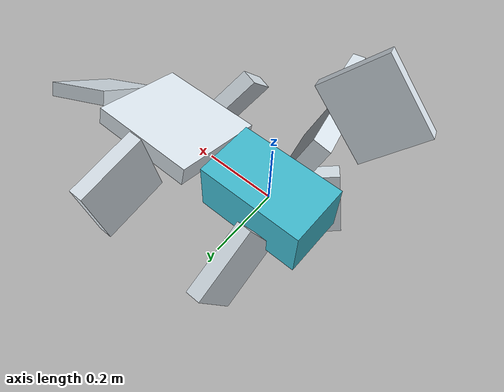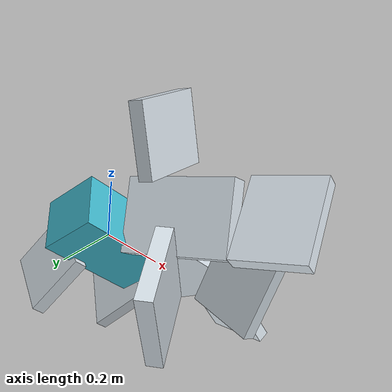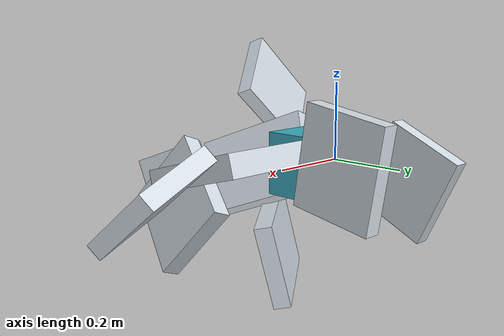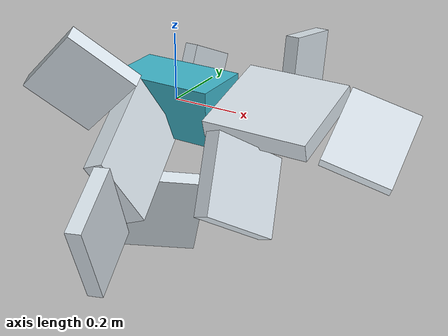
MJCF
<mujoco model="criatura">
  <compiler angle="degree" autolimits="true"/>
  <option timestep="0.002083" gravity="0 0 0" integrator="implicitfast"/>
  <default>
    <geom type="box" density="300.0" rgba="0.85 0.89 0.92 1"/>
    <joint type="hinge"/>
    <motor ctrlrange="-1 1"/>
  </default>
  <worldbody>
    <body name="p0_n0" pos="0.00000 0.00000 0.00000" quat="1.000000 0.000000 0.000000 0.000000">
      <freejoint name="raiz"/>
      <geom name="g_p0_n0" size="0.15495 0.09000 0.08000" rgba="0.25 0.72 0.8 1"/>
      <body name="p1_n4" pos="0.32990 0.00000 0.03558" quat="0.990826 0.135142 0.000000 0.000000">
        <geom name="g_p1_n4" size="0.15495 0.13887 0.02634"/>
        <body name="p2_n5" pos="0.26666 0.01537 -0.04104" quat="0.966846 0.175151 0.182848 0.033124">
          <joint name="p2_n5_j0" axis="0.0000 0.0000 1.0000" pos="-0.12000 0 0" range="-55.06 55.06" damping="0.4640"/>
          <joint name="p2_n5_j1" axis="1.0000 0.0000 0.0000" pos="-0.12000 0 0" range="-55.06 55.06" damping="0.4640"/>
          <geom name="g_p2_n5" size="0.10000 0.11600 0.02000"/>
        </body>
        <body name="p3_n5" pos="-0.04649 0.24763 -0.04545" quat="0.596368 0.379928 0.596368 0.379928">
          <joint name="p3_n5_j0" axis="0.0000 0.0000 1.0000" pos="-0.12000 0 0" range="-55.06 55.06" damping="0.4640"/>
          <joint name="p3_n5_j1" axis="1.0000 0.0000 0.0000" pos="-0.12000 0 0" range="-55.06 55.06" damping="0.4640"/>
          <geom name="g_p3_n5" size="0.10000 0.11600 0.02000"/>
        </body>
        <body name="p4_n5" pos="0.00900 -0.24542 -0.06885" quat="0.737142 -0.253698 0.505208 -0.370167">
          <joint name="p4_n5_j0" axis="0.0000 0.0000 1.0000" pos="-0.13284 0 0" range="-55.06 55.06" damping="0.5908"/>
          <joint name="p4_n5_j1" axis="1.0000 0.0000 0.0000" pos="-0.13284 0 0" range="-55.06 55.06" damping="0.5908"/>
          <geom name="g_p4_n5" size="0.11284 0.13089 0.02257"/>
        </body>
      </body>
      <body name="p5_n1" pos="-0.04649 0.19876 -0.03471" quat="0.596368 0.379928 0.596368 0.379928">
        <joint name="p5_n1_j0" axis="0.0000 0.0000 1.0000" pos="-0.12000 0 0" range="-57.75 57.75" damping="0.4640"/>
        <joint name="p5_n1_j1" axis="1.0000 0.0000 0.0000" pos="-0.12000 0 0" range="-57.75 57.75" damping="0.4640"/>
        <geom name="g_p5_n1" size="0.10000 0.11600 0.02000"/>
      </body>
      <body name="p6_n2" pos="0.02944 -0.25746 -0.04948" quat="0.714129 -0.348779 0.446662 -0.410934">
        <geom name="g_p6_n2" size="0.16638 0.10891 0.02829"/>
        <body name="p7_n3" pos="0.29376 0.00000 0.00000" quat="0.983984 -0.178256 0.000000 0.000000">
          <joint name="p7_n3_j0" axis="0.0000 0.0000 1.0000" pos="-0.12738 0 0" range="-55.06 55.06" damping="0.5350"/>
          <joint name="p7_n3_j1" axis="1.0000 0.0000 0.0000" pos="-0.12738 0 0" range="-55.06 55.06" damping="0.5350"/>
          <geom name="g_p7_n3" size="0.10738 0.12456 0.02148"/>
        </body>
        <body name="p8_n3" pos="-0.04991 -0.22435 -0.04817" quat="0.596368 -0.379928 0.596368 -0.379928">
          <joint name="p8_n3_j0" axis="0.0000 0.0000 1.0000" pos="-0.12738 0 0" range="-55.06 55.06" damping="0.5350"/>
          <joint name="p8_n3_j1" axis="1.0000 0.0000 0.0000" pos="-0.12738 0 0" range="-55.06 55.06" damping="0.5350"/>
          <geom name="g_p8_n3" size="0.10738 0.12456 0.02148"/>
        </body>
        <body name="p9_n3" pos="0.00934 0.22213 -0.07311" quat="0.737142 0.253698 0.505208 0.370167">
          <joint name="p9_n3_j0" axis="0.0000 0.0000 1.0000" pos="-0.14116 0 0" range="-55.06 55.06" damping="0.6161"/>
          <joint name="p9_n3_j1" axis="1.0000 0.0000 0.0000" pos="-0.14116 0 0" range="-55.06 55.06" damping="0.6161"/>
          <geom name="g_p9_n3" size="0.12116 0.14055 0.02423"/>
        </body>
      </body>
    </body>
  </worldbody>
  <actuator>
    <motor name="m_p2_n5_j0" joint="p2_n5_j0" gear="9.2799"/>
    <motor name="m_p2_n5_j1" joint="p2_n5_j1" gear="9.2799"/>
    <motor name="m_p3_n5_j0" joint="p3_n5_j0" gear="9.2799"/>
    <motor name="m_p3_n5_j1" joint="p3_n5_j1" gear="9.2799"/>
    <motor name="m_p4_n5_j0" joint="p4_n5_j0" gear="-11.8160"/>
    <motor name="m_p4_n5_j1" joint="p4_n5_j1" gear="-11.8160"/>
    <motor name="m_p5_n1_j0" joint="p5_n1_j0" gear="9.2799"/>
    <motor name="m_p5_n1_j1" joint="p5_n1_j1" gear="9.2799"/>
    <motor name="m_p7_n3_j0" joint="p7_n3_j0" gear="-10.6996"/>
    <motor name="m_p7_n3_j1" joint="p7_n3_j1" gear="-10.6996"/>
    <motor name="m_p8_n3_j0" joint="p8_n3_j0" gear="-10.6996"/>
    <motor name="m_p8_n3_j1" joint="p8_n3_j1" gear="-10.6996"/>
    <motor name="m_p9_n3_j0" joint="p9_n3_j0" gear="12.3225"/>
    <motor name="m_p9_n3_j1" joint="p9_n3_j1" gear="12.3225"/>
  </actuator>
</mujoco>
